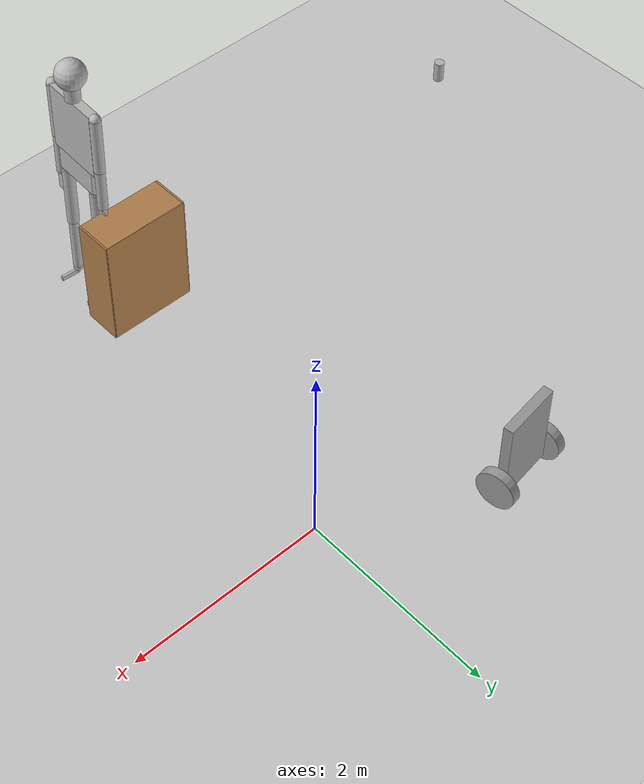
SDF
<sdf version="1.6">
 <world name="default">
  <model name="ground_plane">
   <static>1</static>
   <link name="link">
    <collision name="collision">
     <geometry><plane><normal>0 0 1</normal><size>100 100</size></plane></geometry>
     <surface><friction><ode><mu>100</mu><mu2>50</mu2></ode></friction></surface>
    </collision>
    <visual name="visual">
     <cast_shadows>0</cast_shadows>
     <geometry><plane><normal>0 0 1</normal><size>100 100</size></plane></geometry>
     <material>
      <script><uri>file://media/materials/scripts/gazebo.material</uri><name>Gazebo/Grey</name></script>
     </material>
    </visual>
   </link>
  </model>
  <model name="project1_robot">
   <link name="link_0">
    <pose>-0.000665 0 0.199997 0 -0 0</pose>
    <inertial>
     <mass>1</mass>
     <inertia>
      <ixx>0.166667</ixx>
      <ixy>0</ixy>
      <ixz>0</ixz>
      <iyy>0.166667</iyy>
      <iyz>0</iyz>
      <izz>0.166667</izz>
     </inertia>
    </inertial>
    <visual name="visual">
     <geometry><box><size>0.6 0.1 0.9</size></box></geometry>
     <material>
      <lighting>1</lighting>
      <script><uri>file://media/materials/scripts/gazebo.material</uri><name>Gazebo/Grey</name></script>
      <shader type="pixel"><normal_map>__default__</normal_map></shader>
      <ambient>0.3 0.3 0.3 1</ambient>
      <diffuse>0.7 0.7 0.7 1</diffuse>
      <specular>0.01 0.01 0.01 1</specular>
      <emissive>0 0 0 1</emissive>
     </material>
    </visual>
    <collision name="collision">
     <geometry><box><size>0.6 0.1 1</size></box></geometry>
     <surface>
      <friction>
       <ode><mu>1</mu><mu2>1</mu2><fdir1>0 0 0</fdir1><slip1>0</slip1><slip2>0</slip2></ode>
       <torsional>
        <coefficient>1</coefficient>
        <patch_radius>0</patch_radius>
        <surface_radius>0</surface_radius>
        <use_patch_radius>1</use_patch_radius>
        <ode><slip>0</slip></ode>
       </torsional>
      </friction>
      <bounce><restitution_coefficient>0</restitution_coefficient><threshold>1e+06</threshold></bounce>
      <contact>
       <collide_without_contact>0</collide_without_contact>
       <collide_without_contact_bitmask>1</collide_without_contact_bitmask>
       <collide_bitmask>1</collide_bitmask>
       <ode>
        <soft_cfm>0</soft_cfm>
        <soft_erp>0.2</soft_erp>
        <kp>1e+13</kp>
        <kd>1</kd>
        <max_vel>0.01</max_vel>
        <min_depth>0</min_depth>
       </ode>
       <bullet>
        <split_impulse>1</split_impulse>
        <split_impulse_penetration_threshold>-0.01</split_impulse_penetration_threshold>
        <soft_cfm>0</soft_cfm>
        <soft_erp>0.2</soft_erp>
        <kp>1e+13</kp>
        <kd>1</kd>
       </bullet>
      </contact>
     </surface>
    </collision>
   </link>
   <link name="link_1">
    <pose>0.351352 -0 -0.099508 0 -0.01 0</pose>
    <inertial>
     <mass>1</mass>
     <inertia><ixx>0.145833</ixx><ixy>0</ixy><ixz>0</ixz><iyy>0.145833</iyy><iyz>0</iyz><izz>0.125</izz></inertia>
    </inertial>
    <visual name="visual">
     <pose>0 0 0 0 1.5707 0</pose>
     <geometry><cylinder><radius>0.2</radius><length>0.1</length></cylinder></geometry>
     <material>
      <lighting>1</lighting>
      <script><uri>file://media/materials/scripts/gazebo.material</uri><name>Gazebo/Grey</name></script>
      <shader type="pixel"><normal_map>__default__</normal_map></shader>
      <ambient>0.3 0.3 0.3 1</ambient>
      <diffuse>0.7 0.7 0.7 1</diffuse>
      <specular>0.01 0.01 0.01 1</specular>
      <emissive>0 0 0 1</emissive>
     </material>
    </visual>
    <collision name="collision">
     <pose>0 0 0 0 1.5707 0</pose>
     <geometry><cylinder><radius>0.2</radius><length>0.1</length></cylinder></geometry>
     <surface>
      <friction>
       <ode><mu>1</mu><mu2>1</mu2><fdir1>0 0 0</fdir1><slip1>0</slip1><slip2>0</slip2></ode>
       <torsional>
        <coefficient>1</coefficient>
        <patch_radius>0</patch_radius>
        <surface_radius>0</surface_radius>
        <use_patch_radius>1</use_patch_radius>
        <ode><slip>0</slip></ode>
       </torsional>
      </friction>
      <bounce><restitution_coefficient>0</restitution_coefficient><threshold>1e+06</threshold></bounce>
      <contact>
       <collide_without_contact>0</collide_without_contact>
       <collide_without_contact_bitmask>1</collide_without_contact_bitmask>
       <collide_bitmask>1</collide_bitmask>
       <ode>
        <soft_cfm>0</soft_cfm>
        <soft_erp>0.2</soft_erp>
        <kp>1e+13</kp>
        <kd>1</kd>
        <max_vel>0.01</max_vel>
        <min_depth>0</min_depth>
       </ode>
       <bullet>
        <split_impulse>1</split_impulse>
        <split_impulse_penetration_threshold>-0.01</split_impulse_penetration_threshold>
        <soft_cfm>0</soft_cfm>
        <soft_erp>0.2</soft_erp>
        <kp>1e+13</kp>
        <kd>1</kd>
       </bullet>
      </contact>
     </surface>
    </collision>
   </link>
   <link name="link_1_clone">
    <pose>-0.350684 0 -0.099999 0 -0 0</pose>
    <inertial>
     <mass>1</mass>
     <inertia><ixx>0.145833</ixx><ixy>0</ixy><ixz>0</ixz><iyy>0.145833</iyy><iyz>0</iyz><izz>0.125</izz></inertia>
    </inertial>
    <visual name="visual">
     <pose>0 0 0 0 1.5707 0</pose>
     <geometry><cylinder><radius>0.2</radius><length>0.1</length></cylinder></geometry>
     <material>
      <lighting>1</lighting>
      <script><uri>file://media/materials/scripts/gazebo.material</uri><name>Gazebo/Grey</name></script>
      <shader type="pixel"><normal_map>__default__</normal_map></shader>
      <ambient>0.3 0.3 0.3 1</ambient>
      <diffuse>0.7 0.7 0.7 1</diffuse>
      <specular>0.01 0.01 0.01 1</specular>
      <emissive>0 0 0 1</emissive>
     </material>
    </visual>
    <collision name="collision">
     <pose>0 0 0 0 1.5707 0</pose>
     <geometry><cylinder><radius>0.2</radius><length>0.1</length></cylinder></geometry>
     <surface>
      <friction>
       <ode><mu>1</mu><mu2>1</mu2><fdir1>0 0 0</fdir1><slip1>0</slip1><slip2>0</slip2></ode>
       <torsional>
        <coefficient>1</coefficient>
        <patch_radius>0</patch_radius>
        <surface_radius>0</surface_radius>
        <use_patch_radius>1</use_patch_radius>
        <ode><slip>0</slip></ode>
       </torsional>
      </friction>
      <bounce><restitution_coefficient>0</restitution_coefficient><threshold>1e+06</threshold></bounce>
      <contact>
       <collide_without_contact>0</collide_without_contact>
       <collide_without_contact_bitmask>1</collide_without_contact_bitmask>
       <collide_bitmask>1</collide_bitmask>
       <ode>
        <soft_cfm>0</soft_cfm>
        <soft_erp>0.2</soft_erp>
        <kp>1e+13</kp>
        <kd>1</kd>
        <max_vel>0.01</max_vel>
        <min_depth>0</min_depth>
       </ode>
       <bullet>
        <split_impulse>1</split_impulse>
        <split_impulse_penetration_threshold>-0.01</split_impulse_penetration_threshold>
        <soft_cfm>0</soft_cfm>
        <soft_erp>0.2</soft_erp>
        <kp>1e+13</kp>
        <kd>1</kd>
       </bullet>
      </contact>
     </surface>
    </collision>
   </link>
   <joint name="link_0_JOINT_1" type="revolute2">
    <parent>link_0</parent>
    <child>link_1</child>
    <axis>
     <xyz>1 0 0</xyz>
     <use_parent_model_frame>0</use_parent_model_frame>
     <limit>
      <lower>-1.79769e+308</lower>
      <upper>1.79769e+308</upper>
      <effort>-1</effort>
      <velocity>-1</velocity>
     </limit>
     <dynamics>
      <spring_reference>0</spring_reference>
      <spring_stiffness>0</spring_stiffness>
      <damping>0</damping>
     </dynamics>
    </axis>
    <axis2>
     <xyz>0 1 0</xyz>
     <use_parent_model_frame>0</use_parent_model_frame>
     <dynamics>
      <spring_reference>0</spring_reference>
      <spring_stiffness>0</spring_stiffness>
      <damping>0</damping>
     </dynamics>
     <limit>
      <lower>-1.79769e+308</lower>
      <upper>1.79769e+308</upper>
      <effort>-1</effort>
      <velocity>-1</velocity>
     </limit>
    </axis2>
    <physics>
     <ode><limit><cfm>0</cfm><erp>0.2</erp></limit><suspension><cfm>0</cfm><erp>0.2</erp></suspension></ode>
    </physics>
   </joint>
   <joint name="link_1_clone_JOINT_2" type="revolute2">
    <parent>link_0</parent>
    <child>link_1_clone</child>
    <axis>
     <xyz>1 0 0</xyz>
     <use_parent_model_frame>0</use_parent_model_frame>
     <limit>
      <lower>-1.79769e+308</lower>
      <upper>1.79769e+308</upper>
      <effort>-1</effort>
      <velocity>-1</velocity>
     </limit>
     <dynamics>
      <spring_reference>0</spring_reference>
      <spring_stiffness>0</spring_stiffness>
      <damping>0</damping>
     </dynamics>
    </axis>
    <axis2>
     <xyz>0 1 0</xyz>
     <use_parent_model_frame>0</use_parent_model_frame>
     <dynamics>
      <spring_reference>0</spring_reference>
      <spring_stiffness>0</spring_stiffness>
      <damping>0</damping>
     </dynamics>
     <limit>
      <lower>-1.79769e+308</lower>
      <upper>1.79769e+308</upper>
      <effort>-1</effort>
      <velocity>-1</velocity>
     </limit>
    </axis2>
    <physics>
     <ode><limit><cfm>0</cfm><erp>0.2</erp></limit><suspension><cfm>0</cfm><erp>0.2</erp></suspension></ode>
    </physics>
   </joint>
   <static>0</static>
   <pose>-1.72829 0.801476 0.300027 -4e-06 -7.9e-05 0.148534</pose>
  </model>
  <model name="beer">
   <link name="link">
    <pose>0 0 0.115 0 -0 0</pose>
    <inertial>
     <mass>0.39</mass>
     <inertia><ixx>0.00058</ixx><ixy>0</ixy><ixz>0</ixz><iyy>0.00058</iyy><iyz>0</iyz><izz>0.00019</izz></inertia>
    </inertial>
    <collision name="collision">
     <geometry><cylinder><radius>0.055</radius><length>0.23</length></cylinder></geometry>
    </collision>
    <visual name="visual">
     <geometry><cylinder><radius>0.055</radius><length>0.23</length></cylinder></geometry>
     <material>
      <script>
       <uri>model://beer/materials/scripts</uri>
       <uri>model://beer/materials/textures</uri>
       <name>Beer/Diffuse</name>
      </script>
     </material>
    </visual>
   </link>
   <pose>-5.06977 -3.53298 -7e-06 -1e-06 0 -6.6e-05</pose>
  </model>
  <model name="ragdoll">
   <pose>-0.392232 -3.62871 1.39861 -0.000658 -0.018318 -0.035852</pose>
   <link name="hip">
    <inertial>
     <inertia><ixx>0.1</ixx><ixy>0</ixy><ixz>0</ixz><iyy>0.1</iyy><iyz>0</iyz><izz>0.1</izz></inertia>
     <mass>10</mass>
    </inertial>
    <collision name="hip_geom">
     <pose>0 0 0.125 0 -0 0</pose>
     <geometry><box><size>0.1 0.5 0.25</size></box></geometry>
     <surface>
      <friction><ode><mu>-1</mu><mu2>-1</mu2><fdir1>0 0 0</fdir1><slip1>0</slip1><slip2>0</slip2></ode></friction>
      <bounce><restitution_coefficient>0</restitution_coefficient><threshold>100000</threshold></bounce>
      <contact>
       <ode>
        <soft_cfm>0</soft_cfm>
        <soft_erp>0.2</soft_erp>
        <kp>1e+12</kp>
        <kd>1</kd>
        <max_vel>0</max_vel>
        <min_depth>0.001</min_depth>
       </ode>
      </contact>
     </surface>
    </collision>
    <visual name="hip_geom_visual">
     <pose>0 0 0.125 0 -0 0</pose>
     <geometry><box><size>0.1 0.5 0.25</size></box></geometry>
    </visual>
    <gravity>0</gravity>
   </link>
   <link name="l_thigh_pan">
    <pose>0 0.22 0 0 -0 0</pose>
    <inertial>
     <inertia><ixx>0.01</ixx><ixy>0</ixy><ixz>0</ixz><iyy>0.01</iyy><iyz>0</iyz><izz>0.01</izz></inertia>
     <mass>1</mass>
    </inertial>
    <collision name="l_thigh_pan_geom">
     <pose>0 0 -0.03 0 -0 0</pose>
     <geometry><sphere><radius>0.06</radius></sphere></geometry>
     <surface>
      <friction><ode><mu>-1</mu><mu2>-1</mu2><fdir1>0 0 0</fdir1><slip1>0</slip1><slip2>0</slip2></ode></friction>
      <bounce><restitution_coefficient>0</restitution_coefficient><threshold>100000</threshold></bounce>
      <contact>
       <ode>
        <soft_cfm>0</soft_cfm>
        <soft_erp>0.2</soft_erp>
        <kp>1e+12</kp>
        <kd>1</kd>
        <max_vel>0</max_vel>
        <min_depth>0.001</min_depth>
       </ode>
      </contact>
     </surface>
    </collision>
    <visual name="l_thigh_pan_geom_visual">
     <pose>0 0 -0.03 0 -0 0</pose>
     <geometry><sphere><radius>0.06</radius></sphere></geometry>
    </visual>
    <gravity>0</gravity>
   </link>
   <link name="l_thigh_lift">
    <pose>0 0.22 0 0 -0 0</pose>
    <inertial>
     <inertia><ixx>0.05</ixx><ixy>0</ixy><ixz>0</ixz><iyy>0.05</iyy><iyz>0</iyz><izz>0.05</izz></inertia>
     <mass>5</mass>
    </inertial>
    <collision name="l_thigh_lift_geom">
     <pose>0 0 -0.35 0 -0 0</pose>
     <geometry><cylinder><radius>0.06</radius><length>0.7</length></cylinder></geometry>
     <surface>
      <friction><ode><mu>-1</mu><mu2>-1</mu2><fdir1>0 0 0</fdir1><slip1>0</slip1><slip2>0</slip2></ode></friction>
      <bounce><restitution_coefficient>0</restitution_coefficient><threshold>100000</threshold></bounce>
      <contact>
       <ode>
        <soft_cfm>0</soft_cfm>
        <soft_erp>0.2</soft_erp>
        <kp>1e+12</kp>
        <kd>1</kd>
        <max_vel>0</max_vel>
        <min_depth>0.001</min_depth>
       </ode>
      </contact>
     </surface>
    </collision>
    <visual name="l_thigh_lift_geom_visual">
     <pose>0 0 -0.35 0 -0 0</pose>
     <geometry><cylinder><radius>0.06</radius><length>0.7</length></cylinder></geometry>
    </visual>
    <gravity>0</gravity>
   </link>
   <link name="l_calf">
    <pose>0 0.22 -0.7 0 -0 0</pose>
    <inertial>
     <inertia><ixx>0.02</ixx><ixy>0</ixy><ixz>0</ixz><iyy>0.02</iyy><iyz>0</iyz><izz>0.02</izz></inertia>
     <mass>2</mass>
    </inertial>
    <collision name="l_calf_geom">
     <pose>0 0 -0.3 0 -0 0</pose>
     <geometry><cylinder><radius>0.05</radius><length>0.6</length></cylinder></geometry>
     <surface>
      <friction><ode><mu>-1</mu><mu2>-1</mu2><fdir1>0 0 0</fdir1><slip1>0</slip1><slip2>0</slip2></ode></friction>
      <bounce><restitution_coefficient>0</restitution_coefficient><threshold>100000</threshold></bounce>
      <contact>
       <ode>
        <soft_cfm>0</soft_cfm>
        <soft_erp>0.2</soft_erp>
        <kp>1e+12</kp>
        <kd>1</kd>
        <max_vel>0</max_vel>
        <min_depth>0.001</min_depth>
       </ode>
      </contact>
     </surface>
    </collision>
    <visual name="l_calf_geom_visual">
     <pose>0 0 -0.3 0 -0 0</pose>
     <geometry><cylinder><radius>0.05</radius><length>0.6</length></cylinder></geometry>
    </visual>
    <gravity>0</gravity>
   </link>
   <link name="l_ankle">
    <pose>0 0.22 -1.325 0 -0 0</pose>
    <inertial>
     <inertia><ixx>0.01</ixx><ixy>0</ixy><ixz>0</ixz><iyy>0.01</iyy><iyz>0</iyz><izz>0.01</izz></inertia>
     <mass>1</mass>
    </inertial>
    <collision name="l_ankle_geom">
     <geometry><sphere><radius>0.05</radius></sphere></geometry>
     <surface>
      <friction><ode><mu>-1</mu><mu2>-1</mu2><fdir1>0 0 0</fdir1><slip1>0</slip1><slip2>0</slip2></ode></friction>
      <bounce><restitution_coefficient>0</restitution_coefficient><threshold>100000</threshold></bounce>
      <contact>
       <ode>
        <soft_cfm>0</soft_cfm>
        <soft_erp>0.2</soft_erp>
        <kp>1e+12</kp>
        <kd>1</kd>
        <max_vel>0</max_vel>
        <min_depth>0.001</min_depth>
       </ode>
      </contact>
     </surface>
    </collision>
    <visual name="l_ankle_geom_visual"><geometry><sphere><radius>0.05</radius></sphere></geometry></visual>
    <gravity>0</gravity>
   </link>
   <link name="l_foot">
    <pose>0 0.22 -1.35 0 -0 0</pose>
    <inertial>
     <pose>0.1 0 0 0 -0 0</pose>
     <inertia><ixx>0.01</ixx><ixy>0</ixy><ixz>0</ixz><iyy>0.01</iyy><iyz>0</iyz><izz>0.01</izz></inertia>
     <mass>1</mass>
    </inertial>
    <collision name="l_foot_geom">
     <pose>0.1 0 -0.025 0 -0 0</pose>
     <geometry><box><size>0.2 0.03 0.05</size></box></geometry>
     <surface>
      <friction><ode><mu>-1</mu><mu2>-1</mu2><fdir1>0 0 0</fdir1><slip1>0</slip1><slip2>0</slip2></ode></friction>
      <bounce><restitution_coefficient>0</restitution_coefficient><threshold>100000</threshold></bounce>
      <contact>
       <ode>
        <soft_cfm>0</soft_cfm>
        <soft_erp>0.2</soft_erp>
        <kp>1e+12</kp>
        <kd>1</kd>
        <max_vel>0</max_vel>
        <min_depth>0.001</min_depth>
       </ode>
      </contact>
     </surface>
    </collision>
    <visual name="l_foot_geom_visual">
     <pose>0.1 0 -0.025 0 -0 0</pose>
     <geometry><box><size>0.2 0.03 0.05</size></box></geometry>
    </visual>
   </link>
   <link name="r_thigh_pan">
    <pose>0 -0.22 0 0 -0 0</pose>
    <inertial>
     <inertia><ixx>0.01</ixx><ixy>0</ixy><ixz>0</ixz><iyy>0.01</iyy><iyz>0</iyz><izz>0.01</izz></inertia>
     <mass>1</mass>
    </inertial>
    <collision name="r_thigh_pan_geom">
     <pose>0 0 -0.03 0 -0 0</pose>
     <geometry><sphere><radius>0.06</radius></sphere></geometry>
     <surface>
      <friction><ode><mu>-1</mu><mu2>-1</mu2><fdir1>0 0 0</fdir1><slip1>0</slip1><slip2>0</slip2></ode></friction>
      <bounce><restitution_coefficient>0</restitution_coefficient><threshold>100000</threshold></bounce>
      <contact>
       <ode>
        <soft_cfm>0</soft_cfm>
        <soft_erp>0.2</soft_erp>
        <kp>1e+12</kp>
        <kd>1</kd>
        <max_vel>0</max_vel>
        <min_depth>0.001</min_depth>
       </ode>
      </contact>
     </surface>
    </collision>
    <visual name="r_thigh_pan_geom_visual">
     <pose>0 0 -0.03 0 -0 0</pose>
     <geometry><sphere><radius>0.06</radius></sphere></geometry>
    </visual>
    <gravity>0</gravity>
   </link>
   <link name="r_thigh_lift">
    <pose>0 -0.22 0 0 -0 0</pose>
    <inertial>
     <inertia><ixx>0.05</ixx><ixy>0</ixy><ixz>0</ixz><iyy>0.05</iyy><iyz>0</iyz><izz>0.05</izz></inertia>
     <mass>5</mass>
    </inertial>
    <collision name="r_thigh_lift_geom">
     <pose>0 0 -0.35 0 -0 0</pose>
     <geometry><cylinder><radius>0.06</radius><length>0.7</length></cylinder></geometry>
     <surface>
      <friction><ode><mu>-1</mu><mu2>-1</mu2><fdir1>0 0 0</fdir1><slip1>0</slip1><slip2>0</slip2></ode></friction>
      <bounce><restitution_coefficient>0</restitution_coefficient><threshold>100000</threshold></bounce>
      <contact>
       <ode>
        <soft_cfm>0</soft_cfm>
        <soft_erp>0.2</soft_erp>
        <kp>1e+12</kp>
        <kd>1</kd>
        <max_vel>0</max_vel>
        <min_depth>0.001</min_depth>
       </ode>
      </contact>
     </surface>
    </collision>
    <visual name="r_thigh_lift_geom_visual">
     <pose>0 0 -0.35 0 -0 0</pose>
     <geometry><cylinder><radius>0.06</radius><length>0.7</length></cylinder></geometry>
    </visual>
    <gravity>0</gravity>
   </link>
   <link name="r_calf">
    <pose>0 -0.22 -0.7 0 -0 0</pose>
    <inertial>
     <inertia><ixx>0.02</ixx><ixy>0</ixy><ixz>0</ixz><iyy>0.02</iyy><iyz>0</iyz><izz>0.02</izz></inertia>
     <mass>2</mass>
    </inertial>
    <collision name="r_calf_geom">
     <pose>0 0 -0.3 0 -0 0</pose>
     <geometry><cylinder><radius>0.05</radius><length>0.6</length></cylinder></geometry>
     <surface>
      <friction><ode><mu>-1</mu><mu2>-1</mu2><fdir1>0 0 0</fdir1><slip1>0</slip1><slip2>0</slip2></ode></friction>
      <bounce><restitution_coefficient>0</restitution_coefficient><threshold>100000</threshold></bounce>
      <contact>
       <ode>
        <soft_cfm>0</soft_cfm>
        <soft_erp>0.2</soft_erp>
        <kp>1e+12</kp>
        <kd>1</kd>
        <max_vel>0</max_vel>
        <min_depth>0.001</min_depth>
       </ode>
      </contact>
     </surface>
    </collision>
    <visual name="r_calf_geom_visual">
     <pose>0 0 -0.3 0 -0 0</pose>
     <geometry><cylinder><radius>0.05</radius><length>0.6</length></cylinder></geometry>
    </visual>
    <gravity>0</gravity>
   </link>
   <link name="r_ankle">
    <pose>0 -0.22 -1.325 0 -0 0</pose>
    <inertial>
     <inertia><ixx>0.01</ixx><ixy>0</ixy><ixz>0</ixz><iyy>0.01</iyy><iyz>0</iyz><izz>0.01</izz></inertia>
     <mass>1</mass>
    </inertial>
    <collision name="r_ankle_geom">
     <geometry><sphere><radius>0.05</radius></sphere></geometry>
     <surface>
      <friction><ode><mu>-1</mu><mu2>-1</mu2><fdir1>0 0 0</fdir1><slip1>0</slip1><slip2>0</slip2></ode></friction>
      <bounce><restitution_coefficient>0</restitution_coefficient><threshold>100000</threshold></bounce>
      <contact>
       <ode>
        <soft_cfm>0</soft_cfm>
        <soft_erp>0.2</soft_erp>
        <kp>1e+12</kp>
        <kd>1</kd>
        <max_vel>0</max_vel>
        <min_depth>0.001</min_depth>
       </ode>
      </contact>
     </surface>
    </collision>
    <visual name="r_ankle_geom_visual"><geometry><sphere><radius>0.05</radius></sphere></geometry></visual>
    <gravity>0</gravity>
   </link>
   <link name="r_foot">
    <pose>0 -0.22 -1.35 0 -0 0</pose>
    <inertial>
     <pose>0.1 0 0 0 -0 0</pose>
     <inertia><ixx>0.01</ixx><ixy>0</ixy><ixz>0</ixz><iyy>0.01</iyy><iyz>0</iyz><izz>0.01</izz></inertia>
     <mass>1</mass>
    </inertial>
    <collision name="r_foot_geom">
     <pose>0.1 0 -0.025 0 -0 0</pose>
     <geometry><box><size>0.2 0.03 0.05</size></box></geometry>
     <surface>
      <friction><ode><mu>-1</mu><mu2>-1</mu2><fdir1>0 0 0</fdir1><slip1>0</slip1><slip2>0</slip2></ode></friction>
      <bounce><restitution_coefficient>0</restitution_coefficient><threshold>100000</threshold></bounce>
      <contact>
       <ode>
        <soft_cfm>0</soft_cfm>
        <soft_erp>0.2</soft_erp>
        <kp>1e+12</kp>
        <kd>1</kd>
        <max_vel>0</max_vel>
        <min_depth>0.001</min_depth>
       </ode>
      </contact>
     </surface>
    </collision>
    <visual name="r_foot_geom_visual">
     <pose>0.1 0 -0.025 0 -0 0</pose>
     <geometry><box><size>0.2 0.03 0.05</size></box></geometry>
    </visual>
   </link>
   <link name="torso">
    <pose>0 0 0.25 0 -0 0</pose>
    <inertial>
     <inertia><ixx>0.3</ixx><ixy>0</ixy><ixz>0</ixz><iyy>0.3</iyy><iyz>0</iyz><izz>0.3</izz></inertia>
     <mass>30</mass>
    </inertial>
    <collision name="torso_geom">
     <pose>0 0 0.35 0 -0 0</pose>
     <geometry><box><size>0.1 0.6 0.7</size></box></geometry>
     <surface>
      <friction><ode><mu>-1</mu><mu2>-1</mu2><fdir1>0 0 0</fdir1><slip1>0</slip1><slip2>0</slip2></ode></friction>
      <bounce><restitution_coefficient>0</restitution_coefficient><threshold>100000</threshold></bounce>
      <contact>
       <ode>
        <soft_cfm>0</soft_cfm>
        <soft_erp>0.2</soft_erp>
        <kp>1e+12</kp>
        <kd>1</kd>
        <max_vel>0</max_vel>
        <min_depth>0.001</min_depth>
       </ode>
      </contact>
     </surface>
    </collision>
    <visual name="torso_geom_visual">
     <pose>0 0 0.35 0 -0 0</pose>
     <geometry><box><size>0.1 0.6 0.7</size></box></geometry>
    </visual>
    <gravity>0</gravity>
   </link>
   <link name="l_shoulder">
    <pose>0 0.3275 0.9225 0 -0 0</pose>
    <inertial>
     <inertia><ixx>0.01</ixx><ixy>0</ixy><ixz>0</ixz><iyy>0.01</iyy><iyz>0</iyz><izz>0.01</izz></inertia>
     <mass>1</mass>
    </inertial>
    <collision name="l_shoulder_geom">
     <geometry><sphere><radius>0.055</radius></sphere></geometry>
     <surface>
      <friction><ode><mu>-1</mu><mu2>-1</mu2><fdir1>0 0 0</fdir1><slip1>0</slip1><slip2>0</slip2></ode></friction>
      <bounce><restitution_coefficient>0</restitution_coefficient><threshold>100000</threshold></bounce>
      <contact>
       <ode>
        <soft_cfm>0</soft_cfm>
        <soft_erp>0.2</soft_erp>
        <kp>1e+12</kp>
        <kd>1</kd>
        <max_vel>0</max_vel>
        <min_depth>0.001</min_depth>
       </ode>
      </contact>
     </surface>
    </collision>
    <visual name="l_shoulder_geom_visual"><geometry><sphere><radius>0.055</radius></sphere></geometry></visual>
    <gravity>0</gravity>
   </link>
   <link name="l_upper_arm">
    <pose>0 0.3275 0.9225 0 -0 0</pose>
    <inertial>
     <inertia><ixx>0.02</ixx><ixy>0</ixy><ixz>0</ixz><iyy>0.02</iyy><iyz>0</iyz><izz>0.02</izz></inertia>
     <mass>2</mass>
    </inertial>
    <collision name="l_upper_arm_geom">
     <pose>0 0 -0.3 0 -0 0</pose>
     <geometry><cylinder><radius>0.055</radius><length>0.6</length></cylinder></geometry>
     <surface>
      <friction><ode><mu>-1</mu><mu2>-1</mu2><fdir1>0 0 0</fdir1><slip1>0</slip1><slip2>0</slip2></ode></friction>
      <bounce><restitution_coefficient>0</restitution_coefficient><threshold>100000</threshold></bounce>
      <contact>
       <ode>
        <soft_cfm>0</soft_cfm>
        <soft_erp>0.2</soft_erp>
        <kp>1e+12</kp>
        <kd>1</kd>
        <max_vel>0</max_vel>
        <min_depth>0.001</min_depth>
       </ode>
      </contact>
     </surface>
    </collision>
    <visual name="l_upper_arm_geom_visual">
     <pose>0 0 -0.3 0 -0 0</pose>
     <geometry><cylinder><radius>0.055</radius><length>0.6</length></cylinder></geometry>
    </visual>
    <gravity>0</gravity>
   </link>
   <link name="l_forearm">
    <pose>0 0.3275 0.3225 0 -0 0</pose>
    <inertial>
     <inertia><ixx>0.01</ixx><ixy>0</ixy><ixz>0</ixz><iyy>0.01</iyy><iyz>0</iyz><izz>0.01</izz></inertia>
     <mass>1</mass>
    </inertial>
    <collision name="l_forearm_geom">
     <pose>0 0 -0.225 0 -0 0</pose>
     <geometry><cylinder><radius>0.05</radius><length>0.45</length></cylinder></geometry>
     <surface>
      <friction><ode><mu>-1</mu><mu2>-1</mu2><fdir1>0 0 0</fdir1><slip1>0</slip1><slip2>0</slip2></ode></friction>
      <bounce><restitution_coefficient>0</restitution_coefficient><threshold>100000</threshold></bounce>
      <contact>
       <ode>
        <soft_cfm>0</soft_cfm>
        <soft_erp>0.2</soft_erp>
        <kp>1e+12</kp>
        <kd>1</kd>
        <max_vel>0</max_vel>
        <min_depth>0.001</min_depth>
       </ode>
      </contact>
     </surface>
    </collision>
    <visual name="l_forearm_geom_visual">
     <pose>0 0 -0.225 0 -0 0</pose>
     <geometry><cylinder><radius>0.05</radius><length>0.45</length></cylinder></geometry>
    </visual>
    <gravity>0</gravity>
   </link>
   <link name="l_wrist">
    <pose>0 0.3275 -0.1425 0 -0 0</pose>
    <inertial>
     <inertia><ixx>0.01</ixx><ixy>0</ixy><ixz>0</ixz><iyy>0.01</iyy><iyz>0</iyz><izz>0.01</izz></inertia>
     <mass>1</mass>
    </inertial>
    <collision name="l_wrist_geom">
     <geometry><sphere><radius>0.03</radius></sphere></geometry>
     <surface>
      <friction><ode><mu>-1</mu><mu2>-1</mu2><fdir1>0 0 0</fdir1><slip1>0</slip1><slip2>0</slip2></ode></friction>
      <bounce><restitution_coefficient>0</restitution_coefficient><threshold>100000</threshold></bounce>
      <contact>
       <ode>
        <soft_cfm>0</soft_cfm>
        <soft_erp>0.2</soft_erp>
        <kp>1e+12</kp>
        <kd>1</kd>
        <max_vel>0</max_vel>
        <min_depth>0.001</min_depth>
       </ode>
      </contact>
     </surface>
    </collision>
    <visual name="l_wrist_geom_visual"><geometry><sphere><radius>0.03</radius></sphere></geometry></visual>
    <gravity>0</gravity>
   </link>
   <link name="l_hand">
    <pose>0 0.3275 -0.1575 0 -0 0</pose>
    <inertial>
     <inertia><ixx>0.01</ixx><ixy>0</ixy><ixz>0</ixz><iyy>0.01</iyy><iyz>0</iyz><izz>0.01</izz></inertia>
     <mass>1</mass>
    </inertial>
    <collision name="l_hand_geom">
     <pose>0 0 -0.1 0 -0 0</pose>
     <geometry><box><size>0.03 0.1 0.2</size></box></geometry>
     <surface>
      <friction><ode><mu>-1</mu><mu2>-1</mu2><fdir1>0 0 0</fdir1><slip1>0</slip1><slip2>0</slip2></ode></friction>
      <bounce><restitution_coefficient>0</restitution_coefficient><threshold>100000</threshold></bounce>
      <contact>
       <ode>
        <soft_cfm>0</soft_cfm>
        <soft_erp>0.2</soft_erp>
        <kp>1e+12</kp>
        <kd>1</kd>
        <max_vel>0</max_vel>
        <min_depth>0.001</min_depth>
       </ode>
      </contact>
     </surface>
    </collision>
    <visual name="l_hand_geom_visual">
     <pose>0 0 -0.1 0 -0 0</pose>
     <geometry><box><size>0.03 0.1 0.2</size></box></geometry>
    </visual>
    <gravity>0</gravity>
   </link>
   <link name="neck">
    <pose>0 0 0.95 0 -0 0</pose>
    <inertial>
     <inertia><ixx>0.01</ixx><ixy>0</ixy><ixz>0</ixz><iyy>0.01</iyy><iyz>0</iyz><izz>0.01</izz></inertia>
     <mass>1</mass>
    </inertial>
    <collision name="neck_geom">
     <pose>0 0 0.1 0 -0 0</pose>
     <geometry><cylinder><radius>0.075</radius><length>0.2</length></cylinder></geometry>
     <surface>
      <friction><ode><mu>-1</mu><mu2>-1</mu2><fdir1>0 0 0</fdir1><slip1>0</slip1><slip2>0</slip2></ode></friction>
      <bounce><restitution_coefficient>0</restitution_coefficient><threshold>100000</threshold></bounce>
      <contact>
       <ode>
        <soft_cfm>0</soft_cfm>
        <soft_erp>0.2</soft_erp>
        <kp>1e+12</kp>
        <kd>1</kd>
        <max_vel>0</max_vel>
        <min_depth>0.001</min_depth>
       </ode>
      </contact>
     </surface>
    </collision>
    <visual name="neck_geom_visual">
     <pose>0 0 0.1 0 -0 0</pose>
     <geometry><cylinder><radius>0.075</radius><length>0.2</length></cylinder></geometry>
    </visual>
    <gravity>0</gravity>
   </link>
   <link name="head">
    <pose>0 0 1.225 0 -0 0</pose>
    <inertial>
     <inertia><ixx>0.1</ixx><ixy>0</ixy><ixz>0</ixz><iyy>0.1</iyy><iyz>0</iyz><izz>0.1</izz></inertia>
     <mass>10</mass>
    </inertial>
    <collision name="head_geom">
     <geometry><sphere><radius>0.15</radius></sphere></geometry>
     <surface>
      <friction><ode><mu>-1</mu><mu2>-1</mu2><fdir1>0 0 0</fdir1><slip1>0</slip1><slip2>0</slip2></ode></friction>
      <bounce><restitution_coefficient>0</restitution_coefficient><threshold>100000</threshold></bounce>
      <contact>
       <ode>
        <soft_cfm>0</soft_cfm>
        <soft_erp>0.2</soft_erp>
        <kp>1e+12</kp>
        <kd>1</kd>
        <max_vel>0</max_vel>
        <min_depth>0.001</min_depth>
       </ode>
      </contact>
     </surface>
    </collision>
    <visual name="head_geom_visual"><geometry><sphere><radius>0.15</radius></sphere></geometry></visual>
    <gravity>0</gravity>
   </link>
   <link name="r_shoulder">
    <pose>0 -0.3275 0.9225 0 -0 0</pose>
    <inertial>
     <inertia><ixx>0.01</ixx><ixy>0</ixy><ixz>0</ixz><iyy>0.01</iyy><iyz>0</iyz><izz>0.01</izz></inertia>
     <mass>1</mass>
    </inertial>
    <collision name="r_shoulder_geom">
     <geometry><sphere><radius>0.055</radius></sphere></geometry>
     <surface>
      <friction><ode><mu>-1</mu><mu2>-1</mu2><fdir1>0 0 0</fdir1><slip1>0</slip1><slip2>0</slip2></ode></friction>
      <bounce><restitution_coefficient>0</restitution_coefficient><threshold>100000</threshold></bounce>
      <contact>
       <ode>
        <soft_cfm>0</soft_cfm>
        <soft_erp>0.2</soft_erp>
        <kp>1e+12</kp>
        <kd>1</kd>
        <max_vel>0</max_vel>
        <min_depth>0.001</min_depth>
       </ode>
      </contact>
     </surface>
    </collision>
    <visual name="r_shoulder_geom_visual"><geometry><sphere><radius>0.055</radius></sphere></geometry></visual>
    <gravity>0</gravity>
   </link>
   <link name="r_upper_arm">
    <pose>0 -0.3275 0.9225 0 -0 0</pose>
    <inertial>
     <inertia><ixx>0.02</ixx><ixy>0</ixy><ixz>0</ixz><iyy>0.02</iyy><iyz>0</iyz><izz>0.02</izz></inertia>
     <mass>2</mass>
    </inertial>
    <collision name="r_upper_arm_geom">
     <pose>0 0 -0.3 0 -0 0</pose>
     <geometry><cylinder><radius>0.055</radius><length>0.6</length></cylinder></geometry>
     <surface>
      <friction><ode><mu>-1</mu><mu2>-1</mu2><fdir1>0 0 0</fdir1><slip1>0</slip1><slip2>0</slip2></ode></friction>
      <bounce><restitution_coefficient>0</restitution_coefficient><threshold>100000</threshold></bounce>
      <contact>
       <ode>
        <soft_cfm>0</soft_cfm>
        <soft_erp>0.2</soft_erp>
        <kp>1e+12</kp>
        <kd>1</kd>
        <max_vel>0</max_vel>
        <min_depth>0.001</min_depth>
       </ode>
      </contact>
     </surface>
    </collision>
    <visual name="r_upper_arm_geom_visual">
     <pose>0 0 -0.3 0 -0 0</pose>
     <geometry><cylinder><radius>0.055</radius><length>0.6</length></cylinder></geometry>
    </visual>
    <gravity>0</gravity>
   </link>
   <link name="r_forearm">
    <pose>0 -0.3275 0.3225 0 -0 0</pose>
    <inertial>
     <inertia><ixx>0.01</ixx><ixy>0</ixy><ixz>0</ixz><iyy>0.01</iyy><iyz>0</iyz><izz>0.01</izz></inertia>
     <mass>1</mass>
    </inertial>
    <collision name="r_forearm_geom">
     <pose>0 0 -0.225 0 -0 0</pose>
     <geometry><cylinder><radius>0.05</radius><length>0.45</length></cylinder></geometry>
     <surface>
      <friction><ode><mu>-1</mu><mu2>-1</mu2><fdir1>0 0 0</fdir1><slip1>0</slip1><slip2>0</slip2></ode></friction>
      <bounce><restitution_coefficient>0</restitution_coefficient><threshold>100000</threshold></bounce>
      <contact>
       <ode>
        <soft_cfm>0</soft_cfm>
        <soft_erp>0.2</soft_erp>
        <kp>1e+12</kp>
        <kd>1</kd>
        <max_vel>0</max_vel>
        <min_depth>0.001</min_depth>
       </ode>
      </contact>
     </surface>
    </collision>
    <visual name="r_forearm_geom_visual">
     <pose>0 0 -0.225 0 -0 0</pose>
     <geometry><cylinder><radius>0.05</radius><length>0.45</length></cylinder></geometry>
    </visual>
    <gravity>0</gravity>
   </link>
   <link name="r_wrist">
    <pose>0 -0.3275 -0.1425 0 -0 0</pose>
    <inertial>
     <inertia><ixx>0.01</ixx><ixy>0</ixy><ixz>0</ixz><iyy>0.01</iyy><iyz>0</iyz><izz>0.01</izz></inertia>
     <mass>1</mass>
    </inertial>
    <collision name="r_wrist_geom">
     <geometry><sphere><radius>0.03</radius></sphere></geometry>
     <surface>
      <friction><ode><mu>-1</mu><mu2>-1</mu2><fdir1>0 0 0</fdir1><slip1>0</slip1><slip2>0</slip2></ode></friction>
      <bounce><restitution_coefficient>0</restitution_coefficient><threshold>100000</threshold></bounce>
      <contact>
       <ode>
        <soft_cfm>0</soft_cfm>
        <soft_erp>0.2</soft_erp>
        <kp>1e+12</kp>
        <kd>1</kd>
        <max_vel>0</max_vel>
        <min_depth>0.001</min_depth>
       </ode>
      </contact>
     </surface>
    </collision>
    <visual name="r_wrist_geom_visual"><geometry><sphere><radius>0.03</radius></sphere></geometry></visual>
    <gravity>0</gravity>
   </link>
   <link name="r_hand">
    <pose>0 -0.3275 -0.1575 0 -0 0</pose>
    <inertial>
     <inertia><ixx>0.01</ixx><ixy>0</ixy><ixz>0</ixz><iyy>0.01</iyy><iyz>0</iyz><izz>0.01</izz></inertia>
     <mass>1</mass>
    </inertial>
    <collision name="r_hand_geom">
     <pose>0 0 -0.1 0 -0 0</pose>
     <geometry><box><size>0.03 0.1 0.2</size></box></geometry>
     <surface>
      <friction><ode><mu>-1</mu><mu2>-1</mu2><fdir1>0 0 0</fdir1><slip1>0</slip1><slip2>0</slip2></ode></friction>
      <bounce><restitution_coefficient>0</restitution_coefficient><threshold>100000</threshold></bounce>
      <contact>
       <ode>
        <soft_cfm>0</soft_cfm>
        <soft_erp>0.2</soft_erp>
        <kp>1e+12</kp>
        <kd>1</kd>
        <max_vel>0</max_vel>
        <min_depth>0.001</min_depth>
       </ode>
      </contact>
     </surface>
    </collision>
    <visual name="r_hand_geom_visual">
     <pose>0 0 -0.1 0 -0 0</pose>
     <geometry><box><size>0.03 0.1 0.2</size></box></geometry>
    </visual>
    <gravity>0</gravity>
   </link>
   <joint name="l_thigh_pan_joint" type="revolute">
    <parent>hip</parent>
    <child>l_thigh_pan</child>
    <axis>
     <dynamics>
      <damping>0</damping>
      <friction>0</friction>
      <spring_reference>0</spring_reference>
      <spring_stiffness>0</spring_stiffness>
     </dynamics>
     <limit><lower>-1.5708</lower><upper>1.5708</upper><effort>0</effort><velocity>0</velocity></limit>
     <xyz>0 0 1</xyz>
     <use_parent_model_frame>1</use_parent_model_frame>
    </axis>
   </joint>
   <joint name="l_thigh_lift_joint" type="revolute">
    <parent>l_thigh_pan</parent>
    <child>l_thigh_lift</child>
    <axis>
     <dynamics>
      <damping>0</damping>
      <friction>0</friction>
      <spring_reference>0</spring_reference>
      <spring_stiffness>0</spring_stiffness>
     </dynamics>
     <limit><lower>-1.5708</lower><upper>1.5708</upper><effort>0</effort><velocity>0</velocity></limit>
     <xyz>0 1 0</xyz>
     <use_parent_model_frame>1</use_parent_model_frame>
    </axis>
   </joint>
   <joint name="l_calf_joint" type="revolute">
    <parent>l_thigh_lift</parent>
    <child>l_calf</child>
    <axis>
     <dynamics>
      <damping>0</damping>
      <friction>0</friction>
      <spring_reference>0</spring_reference>
      <spring_stiffness>0</spring_stiffness>
     </dynamics>
     <limit><lower>-1.5708</lower><upper>1.5708</upper><effort>0</effort><velocity>0</velocity></limit>
     <xyz>0 1 0</xyz>
     <use_parent_model_frame>1</use_parent_model_frame>
    </axis>
   </joint>
   <joint name="l_ankle_joint" type="revolute">
    <parent>l_calf</parent>
    <child>l_ankle</child>
    <axis>
     <dynamics>
      <damping>0</damping>
      <friction>0</friction>
      <spring_reference>0</spring_reference>
      <spring_stiffness>0</spring_stiffness>
     </dynamics>
     <limit><lower>-1.5708</lower><upper>1.5708</upper><effort>0</effort><velocity>0</velocity></limit>
     <xyz>0 1 0</xyz>
     <use_parent_model_frame>1</use_parent_model_frame>
    </axis>
   </joint>
   <joint name="l_foot_joint" type="revolute">
    <parent>l_ankle</parent>
    <child>l_foot</child>
    <axis>
     <dynamics>
      <damping>0</damping>
      <friction>0</friction>
      <spring_reference>0</spring_reference>
      <spring_stiffness>0</spring_stiffness>
     </dynamics>
     <limit><lower>-1.5708</lower><upper>1.5708</upper><effort>0</effort><velocity>0</velocity></limit>
     <xyz>1 0 0</xyz>
     <use_parent_model_frame>1</use_parent_model_frame>
    </axis>
   </joint>
   <joint name="r_thigh_pan_joint" type="revolute">
    <parent>hip</parent>
    <child>r_thigh_pan</child>
    <axis>
     <dynamics>
      <damping>0</damping>
      <friction>0</friction>
      <spring_reference>0</spring_reference>
      <spring_stiffness>0</spring_stiffness>
     </dynamics>
     <limit><lower>-1.5708</lower><upper>1.5708</upper><effort>0</effort><velocity>0</velocity></limit>
     <xyz>0 0 1</xyz>
     <use_parent_model_frame>1</use_parent_model_frame>
    </axis>
   </joint>
   <joint name="r_thigh_lift_joint" type="revolute">
    <parent>r_thigh_pan</parent>
    <child>r_thigh_lift</child>
    <axis>
     <dynamics>
      <damping>0</damping>
      <friction>0</friction>
      <spring_reference>0</spring_reference>
      <spring_stiffness>0</spring_stiffness>
     </dynamics>
     <limit><lower>-1.5708</lower><upper>1.5708</upper><effort>0</effort><velocity>0</velocity></limit>
     <xyz>0 1 0</xyz>
     <use_parent_model_frame>1</use_parent_model_frame>
    </axis>
   </joint>
   <joint name="r_calf_joint" type="revolute">
    <parent>r_thigh_lift</parent>
    <child>r_calf</child>
    <axis>
     <dynamics>
      <damping>0</damping>
      <friction>0</friction>
      <spring_reference>0</spring_reference>
      <spring_stiffness>0</spring_stiffness>
     </dynamics>
     <limit><lower>-1.5708</lower><upper>1.5708</upper><effort>0</effort><velocity>0</velocity></limit>
     <xyz>0 1 0</xyz>
     <use_parent_model_frame>1</use_parent_model_frame>
    </axis>
   </joint>
   <joint name="r_ankle_joint" type="revolute">
    <parent>r_calf</parent>
    <child>r_ankle</child>
    <axis>
     <dynamics>
      <damping>0</damping>
      <friction>0</friction>
      <spring_reference>0</spring_reference>
      <spring_stiffness>0</spring_stiffness>
     </dynamics>
     <limit><lower>-1.5708</lower><upper>1.5708</upper><effort>0</effort><velocity>0</velocity></limit>
     <xyz>0 1 0</xyz>
     <use_parent_model_frame>1</use_parent_model_frame>
    </axis>
   </joint>
   <joint name="r_foot_joint" type="revolute">
    <parent>r_ankle</parent>
    <child>r_foot</child>
    <axis>
     <dynamics>
      <damping>0</damping>
      <friction>0</friction>
      <spring_reference>0</spring_reference>
      <spring_stiffness>0</spring_stiffness>
     </dynamics>
     <limit><lower>-1.5708</lower><upper>1.5708</upper><effort>0</effort><velocity>0</velocity></limit>
     <xyz>1 0 0</xyz>
     <use_parent_model_frame>1</use_parent_model_frame>
    </axis>
   </joint>
   <joint name="torso_joint" type="revolute">
    <parent>hip</parent>
    <child>torso</child>
    <axis>
     <dynamics>
      <damping>0</damping>
      <friction>0</friction>
      <spring_reference>0</spring_reference>
      <spring_stiffness>0</spring_stiffness>
     </dynamics>
     <limit><lower>-1.5708</lower><upper>1.5708</upper><effort>0</effort><velocity>0</velocity></limit>
     <xyz>0 1 0</xyz>
     <use_parent_model_frame>1</use_parent_model_frame>
    </axis>
   </joint>
   <joint name="l_shoulder_joint" type="revolute">
    <parent>torso</parent>
    <child>l_shoulder</child>
    <axis>
     <dynamics>
      <damping>0</damping>
      <friction>0</friction>
      <spring_reference>0</spring_reference>
      <spring_stiffness>0</spring_stiffness>
     </dynamics>
     <limit><lower>-1.5708</lower><upper>1.5708</upper><effort>0</effort><velocity>0</velocity></limit>
     <xyz>1 0 0</xyz>
     <use_parent_model_frame>1</use_parent_model_frame>
    </axis>
   </joint>
   <joint name="l_upper_arm_joint" type="revolute">
    <parent>l_shoulder</parent>
    <child>l_upper_arm</child>
    <axis>
     <dynamics>
      <damping>0</damping>
      <friction>0</friction>
      <spring_reference>0</spring_reference>
      <spring_stiffness>0</spring_stiffness>
     </dynamics>
     <limit><lower>-1.5708</lower><upper>1.5708</upper><effort>0</effort><velocity>0</velocity></limit>
     <xyz>0 1 0</xyz>
     <use_parent_model_frame>1</use_parent_model_frame>
    </axis>
   </joint>
   <joint name="l_forearm_joint" type="revolute">
    <parent>l_upper_arm</parent>
    <child>l_forearm</child>
    <axis>
     <dynamics>
      <damping>0</damping>
      <friction>0</friction>
      <spring_reference>0</spring_reference>
      <spring_stiffness>0</spring_stiffness>
     </dynamics>
     <limit><lower>-1.5708</lower><upper>1.5708</upper><effort>0</effort><velocity>0</velocity></limit>
     <xyz>0 1 0</xyz>
     <use_parent_model_frame>1</use_parent_model_frame>
    </axis>
   </joint>
   <joint name="l_wrist_joint" type="revolute">
    <parent>l_forearm</parent>
    <child>l_wrist</child>
    <axis>
     <dynamics>
      <damping>0</damping>
      <friction>0</friction>
      <spring_reference>0</spring_reference>
      <spring_stiffness>0</spring_stiffness>
     </dynamics>
     <limit><lower>-1.5708</lower><upper>1.5708</upper><effort>0</effort><velocity>0</velocity></limit>
     <xyz>0 1 0</xyz>
     <use_parent_model_frame>1</use_parent_model_frame>
    </axis>
   </joint>
   <joint name="l_hand_joint" type="revolute">
    <parent>l_wrist</parent>
    <child>l_hand</child>
    <axis>
     <dynamics>
      <damping>0</damping>
      <friction>0</friction>
      <spring_reference>0</spring_reference>
      <spring_stiffness>0</spring_stiffness>
     </dynamics>
     <limit><lower>-1.5708</lower><upper>1.5708</upper><effort>0</effort><velocity>0</velocity></limit>
     <xyz>0 1 0</xyz>
     <use_parent_model_frame>1</use_parent_model_frame>
    </axis>
   </joint>
   <joint name="neck_joint" type="revolute">
    <parent>torso</parent>
    <child>neck</child>
    <axis>
     <dynamics>
      <damping>0</damping>
      <friction>0</friction>
      <spring_reference>0</spring_reference>
      <spring_stiffness>0</spring_stiffness>
     </dynamics>
     <limit><lower>-1.5708</lower><upper>1.5708</upper><effort>0</effort><velocity>0</velocity></limit>
     <xyz>0 0 1</xyz>
     <use_parent_model_frame>1</use_parent_model_frame>
    </axis>
   </joint>
   <joint name="head_joint" type="revolute">
    <parent>neck</parent>
    <child>head</child>
    <axis>
     <dynamics>
      <damping>0</damping>
      <friction>0</friction>
      <spring_reference>0</spring_reference>
      <spring_stiffness>0</spring_stiffness>
     </dynamics>
     <limit><lower>-1.5708</lower><upper>1.5708</upper><effort>0</effort><velocity>0</velocity></limit>
     <xyz>0 1 0</xyz>
     <use_parent_model_frame>1</use_parent_model_frame>
    </axis>
   </joint>
   <joint name="r_shoulder_joint" type="revolute">
    <parent>torso</parent>
    <child>r_shoulder</child>
    <axis>
     <dynamics>
      <damping>0</damping>
      <friction>0</friction>
      <spring_reference>0</spring_reference>
      <spring_stiffness>0</spring_stiffness>
     </dynamics>
     <limit><lower>-1.5708</lower><upper>1.5708</upper><effort>0</effort><velocity>0</velocity></limit>
     <xyz>1 0 0</xyz>
     <use_parent_model_frame>1</use_parent_model_frame>
    </axis>
   </joint>
   <joint name="r_upper_arm_joint" type="revolute">
    <parent>r_shoulder</parent>
    <child>r_upper_arm</child>
    <axis>
     <dynamics>
      <damping>0</damping>
      <friction>0</friction>
      <spring_reference>0</spring_reference>
      <spring_stiffness>0</spring_stiffness>
     </dynamics>
     <limit><lower>-1.5708</lower><upper>1.5708</upper><effort>0</effort><velocity>0</velocity></limit>
     <xyz>0 1 0</xyz>
     <use_parent_model_frame>1</use_parent_model_frame>
    </axis>
   </joint>
   <joint name="r_forearm_joint" type="revolute">
    <parent>r_upper_arm</parent>
    <child>r_forearm</child>
    <axis>
     <dynamics>
      <damping>0</damping>
      <friction>0</friction>
      <spring_reference>0</spring_reference>
      <spring_stiffness>0</spring_stiffness>
     </dynamics>
     <limit><lower>-1.5708</lower><upper>1.5708</upper><effort>0</effort><velocity>0</velocity></limit>
     <xyz>0 1 0</xyz>
     <use_parent_model_frame>1</use_parent_model_frame>
    </axis>
   </joint>
   <joint name="r_wrist_joint" type="revolute">
    <parent>r_forearm</parent>
    <child>r_wrist</child>
    <axis>
     <dynamics>
      <damping>0</damping>
      <friction>0</friction>
      <spring_reference>0</spring_reference>
      <spring_stiffness>0</spring_stiffness>
     </dynamics>
     <limit><lower>-1.5708</lower><upper>1.5708</upper><effort>0</effort><velocity>0</velocity></limit>
     <xyz>0 1 0</xyz>
     <use_parent_model_frame>1</use_parent_model_frame>
    </axis>
   </joint>
   <joint name="r_hand_joint" type="revolute">
    <parent>r_wrist</parent>
    <child>r_hand</child>
    <axis>
     <dynamics>
      <damping>0</damping>
      <friction>0</friction>
      <spring_reference>0</spring_reference>
      <spring_stiffness>0</spring_stiffness>
     </dynamics>
     <limit><lower>-1.5708</lower><upper>1.5708</upper><effort>0</effort><velocity>0</velocity></limit>
     <xyz>0 1 0</xyz>
     <use_parent_model_frame>1</use_parent_model_frame>
    </axis>
   </joint>
   <static>0</static>
  </model>
  <model name="bookshelf_0">
   <static>1</static>
   <link name="link">
    <inertial><mass>1</mass></inertial>
    <collision name="back">
     <pose>0 0.005 0.6 0 -0 0</pose>
     <geometry><box><size>0.9 0.01 1.2</size></box></geometry>
    </collision>
    <visual name="visual1">
     <pose>0 0.005 0.6 0 -0 0</pose>
     <geometry><box><size>0.9 0.01 1.2</size></box></geometry>
     <material>
      <script><uri>file://media/materials/scripts/gazebo.material</uri><name>Gazebo/Wood</name></script>
     </material>
    </visual>
    <collision name="left_side">
     <pose>0.45 -0.195 0.6 0 -0 0</pose>
     <geometry><box><size>0.02 0.4 1.2</size></box></geometry>
    </collision>
    <visual name="visual2">
     <pose>0.45 -0.195 0.6 0 -0 0</pose>
     <geometry><box><size>0.02 0.4 1.2</size></box></geometry>
     <material>
      <script><uri>file://media/materials/scripts/gazebo.material</uri><name>Gazebo/Wood</name></script>
     </material>
    </visual>
    <collision name="right_side">
     <pose>-0.45 -0.195 0.6 0 -0 0</pose>
     <geometry><box><size>0.02 0.4 1.2</size></box></geometry>
    </collision>
    <visual name="visual3">
     <pose>-0.45 -0.195 0.6 0 -0 0</pose>
     <geometry><box><size>0.02 0.4 1.2</size></box></geometry>
     <material>
      <script><uri>file://media/materials/scripts/gazebo.material</uri><name>Gazebo/Wood</name></script>
     </material>
    </visual>
    <collision name="bottom">
     <pose>0 -0.195 0.03 0 -0 0</pose>
     <geometry><box><size>0.88 0.4 0.06</size></box></geometry>
    </collision>
    <visual name="visual4">
     <pose>0 -0.195 0.03 0 -0 0</pose>
     <geometry><box><size>0.88 0.4 0.06</size></box></geometry>
     <material>
      <script><uri>file://media/materials/scripts/gazebo.material</uri><name>Gazebo/Wood</name></script>
     </material>
    </visual>
    <collision name="top">
     <pose>0 -0.195 1.19 0 -0 0</pose>
     <geometry><box><size>0.88 0.4 0.02</size></box></geometry>
    </collision>
    <visual name="visual5">
     <pose>0 -0.195 1.19 0 -0 0</pose>
     <geometry><box><size>0.88 0.4 0.02</size></box></geometry>
     <material>
      <script><uri>file://media/materials/scripts/gazebo.material</uri><name>Gazebo/Wood</name></script>
     </material>
    </visual>
    <collision name="low_shelf">
     <pose>0 -0.195 0.43 0 -0 0</pose>
     <geometry><box><size>0.88 0.4 0.02</size></box></geometry>
    </collision>
    <visual name="visual6">
     <pose>0 -0.195 0.43 0 -0 0</pose>
     <geometry><box><size>0.88 0.4 0.02</size></box></geometry>
     <material>
      <script><uri>file://media/materials/scripts/gazebo.material</uri><name>Gazebo/Wood</name></script>
     </material>
    </visual>
    <collision name="high_shelf">
     <pose>0 -0.195 0.8 0 -0 0</pose>
     <geometry><box><size>0.88 0.4 0.02</size></box></geometry>
    </collision>
    <visual name="visual7">
     <pose>0 -0.195 0.8 0 -0 0</pose>
     <geometry><box><size>0.88 0.4 0.02</size></box></geometry>
     <material>
      <script><uri>file://media/materials/scripts/gazebo.material</uri><name>Gazebo/Wood</name></script>
     </material>
    </visual>
   </link>
   <pose>-0.55358 -2.91606 0 0 -0 0</pose>
  </model>
 </world>
</sdf>
